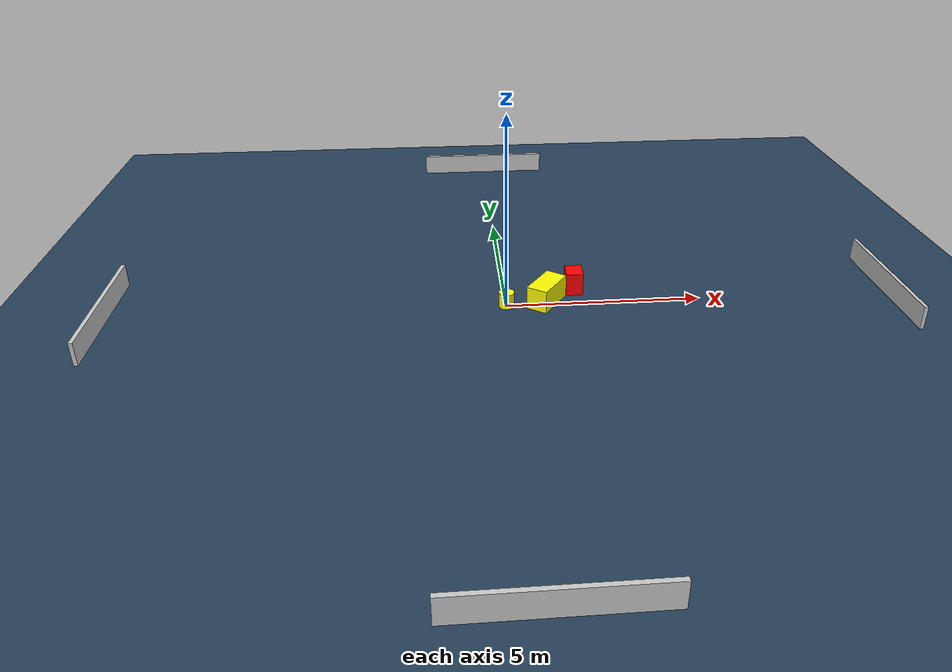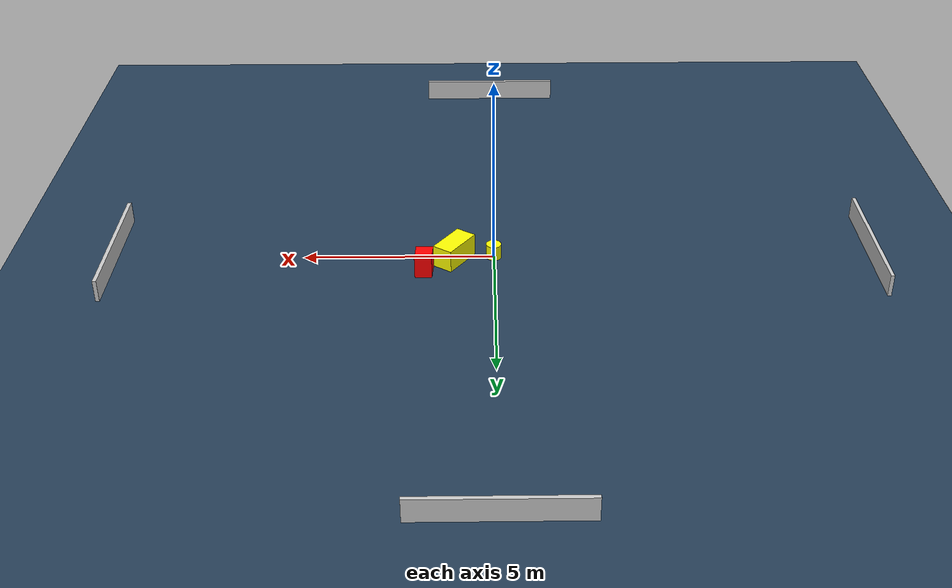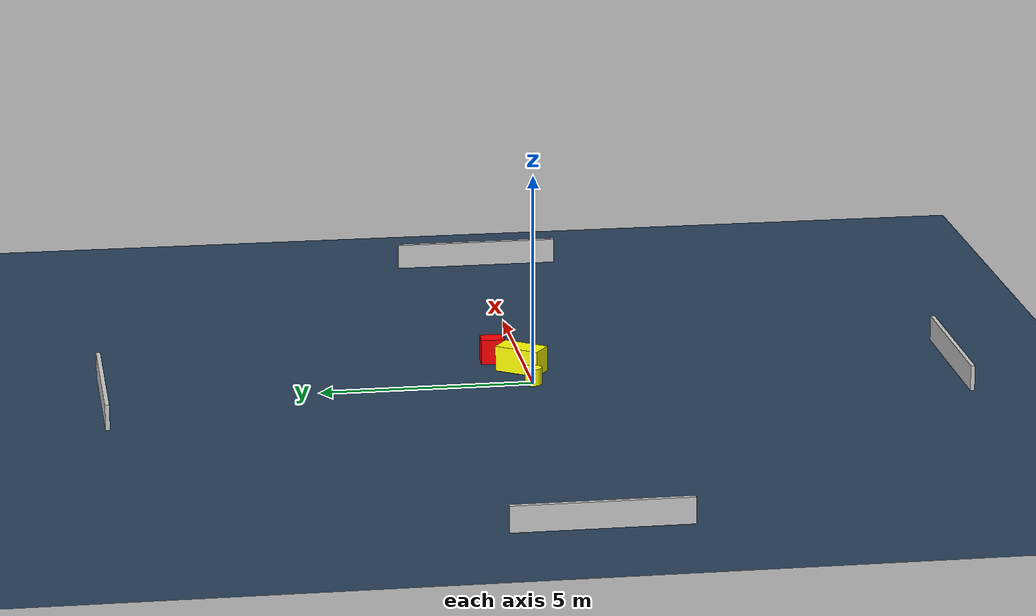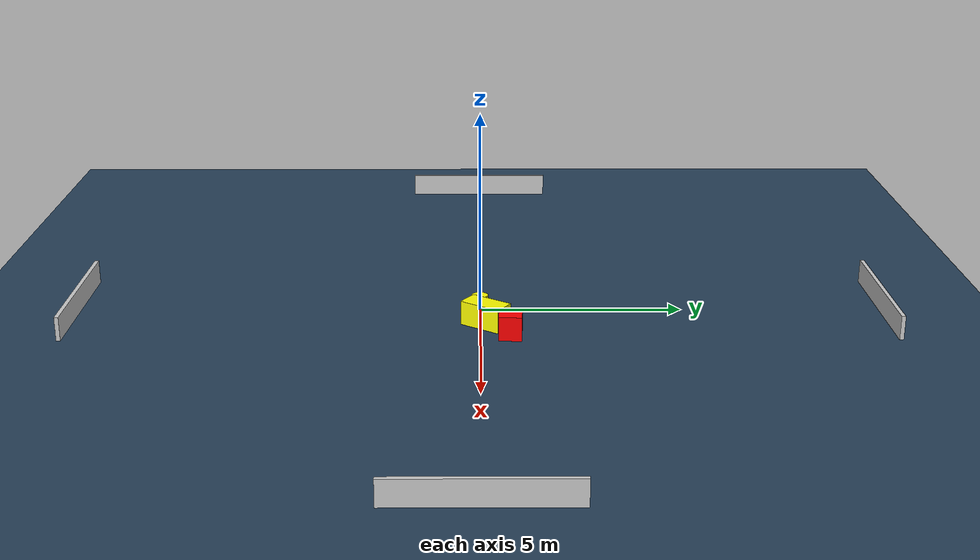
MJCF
<?xml version="1.0" ?>
<mujoco model="generated_environment">
  <option timestep="0.01" integrator="RK4" cone="elliptic"/>
  <default>
    <geom density="1"/>
  </default>
  <asset>
    <texture builtin="gradient" height="3072" name="skybox" rgb1="0.3 0.5 0.7" rgb2="0 0 0" type="skybox" width="512"/>
    <texture builtin="checker" height="300" name="groundplane" rgb1="0.2 0.3 0.4" rgb2="0.1 0.2 0.3" type="2d" width="300"/>
    <material name="groundplane" reflectance="0.2" texrepeat="5 5" texture="groundplane"/>
  </asset>
  <worldbody>
    <light dir="0 0 -1" directional="true" pos="0 0 1.5"/>
    <geom condim="3" friction="0.5 0.005 0.001" material="groundplane" name="floor" pos="0 0 0" size="0 0 0.05" type="plane"/>
    <body name="walls">
      <geom name="wall_1" condim="4" pos="-10.0 0.0 0.3" rgba="0.800000011920929 0.800000011920929 0.800000011920929 1.0" size="0.05 2.0 0.3" type="box"/>
      <geom name="wall_2" condim="4" pos="10.0 0.0 0.3" rgba="0.800000011920929 0.800000011920929 0.800000011920929 1.0" size="0.05 2.0 0.3" type="box"/>
      <geom name="wall_3" condim="4" pos="0.0 -10.0 0.3" rgba="0.800000011920929 0.800000011920929 0.800000011920929 1.0" size="2.0 0.05 0.3" type="box"/>
      <geom name="wall_4" condim="4" pos="0.0 10.0 0.3" rgba="0.800000011920929 0.800000011920929 0.800000011920929 1.0" size="2.0 0.05 0.3" type="box"/>
    </body>
    <body name="robot">
      <joint name="joint_x" type="slide" pos="0 0 0" axis="1 0 0"/>
      <joint name="joint_y" type="slide" pos="0 0 0" axis="0 1 0"/>
      <geom name="robot" type="cylinder" pos="0.0 0.0 0.2" size="0.2 0.2 0.0" mass="5.0" friction="1.0 0.005 0.0001" condim="4" rgba="1.0 1.0 0.0 1.0"/>
    </body>
    <body name="obstacle_1_movable">
      <geom name="obstacle_1_movable" condim="4" pos="1.040606068961684 0.1329227742270525 0.3" euler="0 0 235.0867982406318" friction="0.0 0.005 0.001" rgba="1.0 1.0 0.0 1.0" size="0.5464106915360429 0.2793054223820133 0.3" type="box" mass="0.1"/>
      <joint type="free"/>
    </body>
    <body name="obstacle_2_static">
      <geom name="obstacle_2_static" condim="4" pos="1.8212987762180595 0.7148710034460632 0.3" euler="0 0 266.8248057550376" friction="0.0 0.005 0.001" rgba="1.0 0.0 0.0 1.0" size="0.2786575402414689 0.22367410187506043 0.3" type="box"/>
    </body>
  </worldbody>
  <actuator>
    <motor name="actuator_x" joint="joint_x" gear="1" ctrlrange="-1 1"/>
    <motor name="actuator_y" joint="joint_y" gear="1" ctrlrange="-1 1"/>
  </actuator>
</mujoco>
